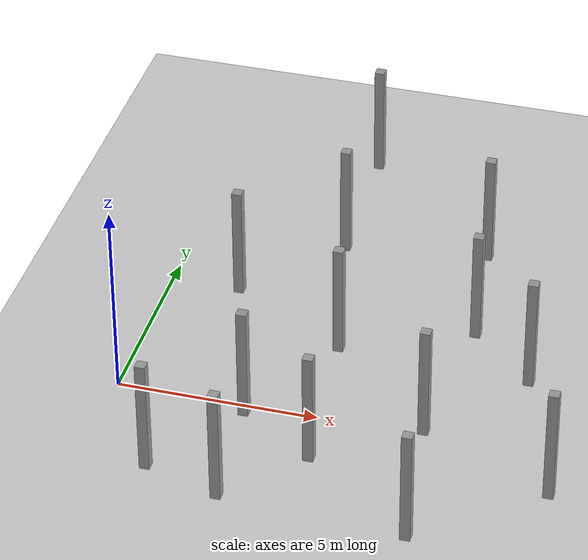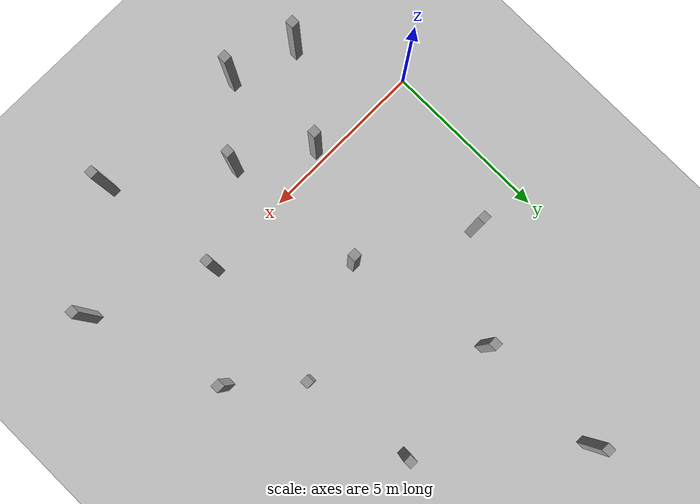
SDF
<sdf version="1.6">
 <world name="default">
  <model name="ground_plane">
   <static>1</static>
   <link name="link">
    <collision name="collision">
     <geometry><plane><normal>0 0 1</normal><size>100 100</size></plane></geometry>
     <surface><friction><ode><mu>100</mu><mu2>50</mu2></ode></friction></surface>
    </collision>
    <visual name="visual">
     <cast_shadows>0</cast_shadows>
     <geometry><plane><normal>0 0 1</normal><size>100 100</size></plane></geometry>
     <material>
      <script><uri>file://media/materials/scripts/gazebo.material</uri><name>Gazebo/Grey</name></script>
     </material>
    </visual>
   </link>
  </model>
  <model name="box_2_5">
   <link name="link">
    <pose>0 0 1 0 -0 0</pose>
    <inertial>
     <mass>1</mass>
     <inertia><ixx>5.16667</ixx><ixy>0</ixy><ixz>0</ixz><iyy>5.16667</iyy><iyz>0</iyz><izz>5.16667</izz></inertia>
     <pose>0 0 1 0 -0 0</pose>
    </inertial>
    <visual name="ModelPreview_4::link::visual_1">
     <geometry><box><size>0.25 0.25 3</size></box></geometry>
     <material>
      <script><name>Gazebo/Grey</name><uri>file://media/materials/scripts/gazebo.material</uri></script>
      <ambient>0.3 0.3 0.3 1</ambient>
      <diffuse>0.7 0.7 0.7 1</diffuse>
      <specular>0.01 0.01 0.01 1</specular>
      <emissive>0 0 0 1</emissive>
      <shader type="vertex"><normal_map>__default__</normal_map></shader>
     </material>
    </visual>
    <visual name="visual">
     <geometry><box><size>0.25 0.25 3</size></box></geometry>
     <material>
      <script><name>Gazebo/Grey</name><uri>file://media/materials/scripts/gazebo.material</uri></script>
      <ambient>0.3 0.3 0.3 1</ambient>
      <diffuse>0.7 0.7 0.7 1</diffuse>
      <specular>0.01 0.01 0.01 1</specular>
      <emissive>0 0 0 1</emissive>
      <shader type="vertex"><normal_map>__default__</normal_map></shader>
     </material>
    </visual>
    <collision name="collision">
     <geometry><box><size>0.25 0.25 3</size></box></geometry>
     <surface>
      <friction>
       <ode><mu>1</mu><mu2>1</mu2><fdir1>0 0 0</fdir1><slip1>0</slip1><slip2>0</slip2></ode>
       <torsional>
        <coefficient>1</coefficient>
        <patch_radius>0</patch_radius>
        <surface_radius>0</surface_radius>
        <use_patch_radius>1</use_patch_radius>
        <ode><slip>0</slip></ode>
       </torsional>
      </friction>
      <bounce><restitution_coefficient>0</restitution_coefficient><threshold>1e+06</threshold></bounce>
      <contact>
       <collide_without_contact>0</collide_without_contact>
       <collide_without_contact_bitmask>1</collide_without_contact_bitmask>
       <collide_bitmask>1</collide_bitmask>
       <ode>
        <soft_cfm>0</soft_cfm>
        <soft_erp>0.2</soft_erp>
        <kp>1e+13</kp>
        <kd>1</kd>
        <max_vel>0.01</max_vel>
        <min_depth>0</min_depth>
       </ode>
       <bullet>
        <split_impulse>1</split_impulse>
        <split_impulse_penetration_threshold>-0.01</split_impulse_penetration_threshold>
        <soft_cfm>0</soft_cfm>
        <soft_erp>0.2</soft_erp>
        <kp>1e+13</kp>
        <kd>1</kd>
       </bullet>
      </contact>
     </surface>
    </collision>
   </link>
   <static>0</static>
   <pose>7.55225 0.161647 0.499023 -7e-06 -0 -0.000106</pose>
  </model>
  <model name="box_2_6">
   <link name="link">
    <pose>0 0 1 0 -0 0</pose>
    <inertial>
     <mass>1</mass>
     <inertia><ixx>5.16667</ixx><ixy>0</ixy><ixz>0</ixz><iyy>5.16667</iyy><iyz>0</iyz><izz>5.16667</izz></inertia>
     <pose>0 0 1 0 -0 0</pose>
    </inertial>
    <visual name="ModelPreview_4::link::visual_1">
     <geometry><box><size>0.25 0.25 3</size></box></geometry>
     <material>
      <script><name>Gazebo/Grey</name><uri>file://media/materials/scripts/gazebo.material</uri></script>
      <ambient>0.3 0.3 0.3 1</ambient>
      <diffuse>0.7 0.7 0.7 1</diffuse>
      <specular>0.01 0.01 0.01 1</specular>
      <emissive>0 0 0 1</emissive>
      <shader type="vertex"><normal_map>__default__</normal_map></shader>
     </material>
    </visual>
    <visual name="visual">
     <geometry><box><size>0.25 0.25 3</size></box></geometry>
     <material>
      <script><name>Gazebo/Grey</name><uri>file://media/materials/scripts/gazebo.material</uri></script>
      <ambient>0.3 0.3 0.3 1</ambient>
      <diffuse>0.7 0.7 0.7 1</diffuse>
      <specular>0.01 0.01 0.01 1</specular>
      <emissive>0 0 0 1</emissive>
      <shader type="vertex"><normal_map>__default__</normal_map></shader>
     </material>
    </visual>
    <collision name="collision">
     <geometry><box><size>0.25 0.25 3</size></box></geometry>
     <surface>
      <friction>
       <ode><mu>1</mu><mu2>1</mu2><fdir1>0 0 0</fdir1><slip1>0</slip1><slip2>0</slip2></ode>
       <torsional>
        <coefficient>1</coefficient>
        <patch_radius>0</patch_radius>
        <surface_radius>0</surface_radius>
        <use_patch_radius>1</use_patch_radius>
        <ode><slip>0</slip></ode>
       </torsional>
      </friction>
      <bounce><restitution_coefficient>0</restitution_coefficient><threshold>1e+06</threshold></bounce>
      <contact>
       <collide_without_contact>0</collide_without_contact>
       <collide_without_contact_bitmask>1</collide_without_contact_bitmask>
       <collide_bitmask>1</collide_bitmask>
       <ode>
        <soft_cfm>0</soft_cfm>
        <soft_erp>0.2</soft_erp>
        <kp>1e+13</kp>
        <kd>1</kd>
        <max_vel>0.01</max_vel>
        <min_depth>0</min_depth>
       </ode>
       <bullet>
        <split_impulse>1</split_impulse>
        <split_impulse_penetration_threshold>-0.01</split_impulse_penetration_threshold>
        <soft_cfm>0</soft_cfm>
        <soft_erp>0.2</soft_erp>
        <kp>1e+13</kp>
        <kd>1</kd>
       </bullet>
      </contact>
     </surface>
    </collision>
   </link>
   <static>0</static>
   <pose>3.4918 -3.31678 0.49912 0 0 -9e-05</pose>
  </model>
  <model name="box_2_13">
   <link name="link">
    <pose>0 0 1 0 -0 0</pose>
    <inertial>
     <mass>1</mass>
     <inertia><ixx>5.16667</ixx><ixy>0</ixy><ixz>0</ixz><iyy>5.16667</iyy><iyz>0</iyz><izz>5.16667</izz></inertia>
     <pose>0 0 1 0 -0 0</pose>
    </inertial>
    <visual name="ModelPreview_4::link::visual_1">
     <geometry><box><size>0.25 0.25 3</size></box></geometry>
     <material>
      <script><name>Gazebo/Grey</name><uri>file://media/materials/scripts/gazebo.material</uri></script>
      <ambient>0.3 0.3 0.3 1</ambient>
      <diffuse>0.7 0.7 0.7 1</diffuse>
      <specular>0.01 0.01 0.01 1</specular>
      <emissive>0 0 0 1</emissive>
      <shader type="vertex"><normal_map>__default__</normal_map></shader>
     </material>
    </visual>
    <visual name="visual">
     <geometry><box><size>0.25 0.25 3</size></box></geometry>
     <material>
      <script><name>Gazebo/Grey</name><uri>file://media/materials/scripts/gazebo.material</uri></script>
      <ambient>0.3 0.3 0.3 1</ambient>
      <diffuse>0.7 0.7 0.7 1</diffuse>
      <specular>0.01 0.01 0.01 1</specular>
      <emissive>0 0 0 1</emissive>
      <shader type="vertex"><normal_map>__default__</normal_map></shader>
     </material>
    </visual>
    <collision name="collision">
     <geometry><box><size>0.25 0.25 3</size></box></geometry>
     <surface>
      <friction>
       <ode><mu>1</mu><mu2>1</mu2><fdir1>0 0 0</fdir1><slip1>0</slip1><slip2>0</slip2></ode>
       <torsional>
        <coefficient>1</coefficient>
        <patch_radius>0</patch_radius>
        <surface_radius>0</surface_radius>
        <use_patch_radius>1</use_patch_radius>
        <ode><slip>0</slip></ode>
       </torsional>
      </friction>
      <bounce><restitution_coefficient>0</restitution_coefficient><threshold>1e+06</threshold></bounce>
      <contact>
       <collide_without_contact>0</collide_without_contact>
       <collide_without_contact_bitmask>1</collide_without_contact_bitmask>
       <collide_bitmask>1</collide_bitmask>
       <ode>
        <soft_cfm>0</soft_cfm>
        <soft_erp>0.2</soft_erp>
        <kp>1e+13</kp>
        <kd>1</kd>
        <max_vel>0.01</max_vel>
        <min_depth>0</min_depth>
       </ode>
       <bullet>
        <split_impulse>1</split_impulse>
        <split_impulse_penetration_threshold>-0.01</split_impulse_penetration_threshold>
        <soft_cfm>0</soft_cfm>
        <soft_erp>0.2</soft_erp>
        <kp>1e+13</kp>
        <kd>1</kd>
       </bullet>
      </contact>
     </surface>
    </collision>
   </link>
   <static>0</static>
   <pose>8.04407 -3.57108 0.49912 0 0 -0.000173</pose>
  </model>
  <model name="box_2_14">
   <link name="link">
    <pose>0 0 1 0 -0 0</pose>
    <inertial>
     <mass>1</mass>
     <inertia><ixx>5.16667</ixx><ixy>0</ixy><ixz>0</ixz><iyy>5.16667</iyy><iyz>0</iyz><izz>5.16667</izz></inertia>
     <pose>0 0 1 0 -0 0</pose>
    </inertial>
    <visual name="ModelPreview_4::link::visual_1">
     <geometry><box><size>0.25 0.25 3</size></box></geometry>
     <material>
      <script><name>Gazebo/Grey</name><uri>file://media/materials/scripts/gazebo.material</uri></script>
      <ambient>0.3 0.3 0.3 1</ambient>
      <diffuse>0.7 0.7 0.7 1</diffuse>
      <specular>0.01 0.01 0.01 1</specular>
      <emissive>0 0 0 1</emissive>
      <shader type="vertex"><normal_map>__default__</normal_map></shader>
     </material>
    </visual>
    <visual name="visual">
     <geometry><box><size>0.25 0.25 3</size></box></geometry>
     <material>
      <script><name>Gazebo/Grey</name><uri>file://media/materials/scripts/gazebo.material</uri></script>
      <ambient>0.3 0.3 0.3 1</ambient>
      <diffuse>0.7 0.7 0.7 1</diffuse>
      <specular>0.01 0.01 0.01 1</specular>
      <emissive>0 0 0 1</emissive>
      <shader type="vertex"><normal_map>__default__</normal_map></shader>
     </material>
    </visual>
    <collision name="collision">
     <geometry><box><size>0.25 0.25 3</size></box></geometry>
     <surface>
      <friction>
       <ode><mu>1</mu><mu2>1</mu2><fdir1>0 0 0</fdir1><slip1>0</slip1><slip2>0</slip2></ode>
       <torsional>
        <coefficient>1</coefficient>
        <patch_radius>0</patch_radius>
        <surface_radius>0</surface_radius>
        <use_patch_radius>1</use_patch_radius>
        <ode><slip>0</slip></ode>
       </torsional>
      </friction>
      <bounce><restitution_coefficient>0</restitution_coefficient><threshold>1e+06</threshold></bounce>
      <contact>
       <collide_without_contact>0</collide_without_contact>
       <collide_without_contact_bitmask>1</collide_without_contact_bitmask>
       <collide_bitmask>1</collide_bitmask>
       <ode>
        <soft_cfm>0</soft_cfm>
        <soft_erp>0.2</soft_erp>
        <kp>1e+13</kp>
        <kd>1</kd>
        <max_vel>0.01</max_vel>
        <min_depth>0</min_depth>
       </ode>
       <bullet>
        <split_impulse>1</split_impulse>
        <split_impulse_penetration_threshold>-0.01</split_impulse_penetration_threshold>
        <soft_cfm>0</soft_cfm>
        <soft_erp>0.2</soft_erp>
        <kp>1e+13</kp>
        <kd>1</kd>
       </bullet>
      </contact>
     </surface>
    </collision>
   </link>
   <static>0</static>
   <pose>3.24903 -0.25791 0.49912 0 0 -0.000165</pose>
  </model>
  <model name="box_2_15">
   <link name="link">
    <pose>0 0 1 0 -0 0</pose>
    <inertial>
     <mass>1</mass>
     <inertia><ixx>5.16667</ixx><ixy>0</ixy><ixz>0</ixz><iyy>5.16667</iyy><iyz>0</iyz><izz>5.16667</izz></inertia>
     <pose>0 0 1 0 -0 0</pose>
    </inertial>
    <visual name="ModelPreview_4::link::visual_1">
     <geometry><box><size>0.25 0.25 3</size></box></geometry>
     <material>
      <script><name>Gazebo/Grey</name><uri>file://media/materials/scripts/gazebo.material</uri></script>
      <ambient>0.3 0.3 0.3 1</ambient>
      <diffuse>0.7 0.7 0.7 1</diffuse>
      <specular>0.01 0.01 0.01 1</specular>
      <emissive>0 0 0 1</emissive>
      <shader type="vertex"><normal_map>__default__</normal_map></shader>
     </material>
    </visual>
    <visual name="visual">
     <geometry><box><size>0.25 0.25 3</size></box></geometry>
     <material>
      <script><name>Gazebo/Grey</name><uri>file://media/materials/scripts/gazebo.material</uri></script>
      <ambient>0.3 0.3 0.3 1</ambient>
      <diffuse>0.7 0.7 0.7 1</diffuse>
      <specular>0.01 0.01 0.01 1</specular>
      <emissive>0 0 0 1</emissive>
      <shader type="vertex"><normal_map>__default__</normal_map></shader>
     </material>
    </visual>
    <collision name="collision">
     <geometry><box><size>0.25 0.25 3</size></box></geometry>
     <surface>
      <friction>
       <ode><mu>1</mu><mu2>1</mu2><fdir1>0 0 0</fdir1><slip1>0</slip1><slip2>0</slip2></ode>
       <torsional>
        <coefficient>1</coefficient>
        <patch_radius>0</patch_radius>
        <surface_radius>0</surface_radius>
        <use_patch_radius>1</use_patch_radius>
        <ode><slip>0</slip></ode>
       </torsional>
      </friction>
      <bounce><restitution_coefficient>0</restitution_coefficient><threshold>1e+06</threshold></bounce>
      <contact>
       <collide_without_contact>0</collide_without_contact>
       <collide_without_contact_bitmask>1</collide_without_contact_bitmask>
       <collide_bitmask>1</collide_bitmask>
       <ode>
        <soft_cfm>0</soft_cfm>
        <soft_erp>0.2</soft_erp>
        <kp>1e+13</kp>
        <kd>1</kd>
        <max_vel>0.01</max_vel>
        <min_depth>0</min_depth>
       </ode>
       <bullet>
        <split_impulse>1</split_impulse>
        <split_impulse_penetration_threshold>-0.01</split_impulse_penetration_threshold>
        <soft_cfm>0</soft_cfm>
        <soft_erp>0.2</soft_erp>
        <kp>1e+13</kp>
        <kd>1</kd>
       </bullet>
      </contact>
     </surface>
    </collision>
   </link>
   <static>0</static>
   <pose>1.7506 4.41033 0.49912 0 0 -0.000142</pose>
  </model>
  <model name="box_2_18">
   <link name="link">
    <pose>0 0 1 0 -0 0</pose>
    <inertial>
     <mass>1</mass>
     <inertia><ixx>5.16667</ixx><ixy>0</ixy><ixz>0</ixz><iyy>5.16667</iyy><iyz>0</iyz><izz>5.16667</izz></inertia>
     <pose>0 0 1 0 -0 0</pose>
    </inertial>
    <visual name="ModelPreview_4::link::visual_1">
     <geometry><box><size>0.25 0.25 3</size></box></geometry>
     <material>
      <script><name>Gazebo/Grey</name><uri>file://media/materials/scripts/gazebo.material</uri></script>
      <ambient>0.3 0.3 0.3 1</ambient>
      <diffuse>0.7 0.7 0.7 1</diffuse>
      <specular>0.01 0.01 0.01 1</specular>
      <emissive>0 0 0 1</emissive>
      <shader type="vertex"><normal_map>__default__</normal_map></shader>
     </material>
    </visual>
    <visual name="visual">
     <geometry><box><size>0.25 0.25 3</size></box></geometry>
     <material>
      <script><name>Gazebo/Grey</name><uri>file://media/materials/scripts/gazebo.material</uri></script>
      <ambient>0.3 0.3 0.3 1</ambient>
      <diffuse>0.7 0.7 0.7 1</diffuse>
      <specular>0.01 0.01 0.01 1</specular>
      <emissive>0 0 0 1</emissive>
      <shader type="vertex"><normal_map>__default__</normal_map></shader>
     </material>
    </visual>
    <collision name="collision">
     <geometry><box><size>0.25 0.25 3</size></box></geometry>
     <surface>
      <friction>
       <ode><mu>1</mu><mu2>1</mu2><fdir1>0 0 0</fdir1><slip1>0</slip1><slip2>0</slip2></ode>
       <torsional>
        <coefficient>1</coefficient>
        <patch_radius>0</patch_radius>
        <surface_radius>0</surface_radius>
        <use_patch_radius>1</use_patch_radius>
        <ode><slip>0</slip></ode>
       </torsional>
      </friction>
      <bounce><restitution_coefficient>0</restitution_coefficient><threshold>1e+06</threshold></bounce>
      <contact>
       <collide_without_contact>0</collide_without_contact>
       <collide_without_contact_bitmask>1</collide_without_contact_bitmask>
       <collide_bitmask>1</collide_bitmask>
       <ode>
        <soft_cfm>0</soft_cfm>
        <soft_erp>0.2</soft_erp>
        <kp>1e+13</kp>
        <kd>1</kd>
        <max_vel>0.01</max_vel>
        <min_depth>0</min_depth>
       </ode>
       <bullet>
        <split_impulse>1</split_impulse>
        <split_impulse_penetration_threshold>-0.01</split_impulse_penetration_threshold>
        <soft_cfm>0</soft_cfm>
        <soft_erp>0.2</soft_erp>
        <kp>1e+13</kp>
        <kd>1</kd>
       </bullet>
      </contact>
     </surface>
    </collision>
   </link>
   <static>0</static>
   <pose>7.90997 4.14944 0.49912 0 0 -0.00012</pose>
  </model>
  <model name="box_2_20">
   <link name="link">
    <pose>0 0 1 0 -0 0</pose>
    <inertial>
     <mass>1</mass>
     <inertia><ixx>5.16667</ixx><ixy>0</ixy><ixz>0</ixz><iyy>5.16667</iyy><iyz>0</iyz><izz>5.16667</izz></inertia>
     <pose>0 0 1 0 -0 0</pose>
    </inertial>
    <visual name="ModelPreview_4::link::visual_1">
     <geometry><box><size>0.25 0.25 3</size></box></geometry>
     <material>
      <script><name>Gazebo/Grey</name><uri>file://media/materials/scripts/gazebo.material</uri></script>
      <ambient>0.3 0.3 0.3 1</ambient>
      <diffuse>0.7 0.7 0.7 1</diffuse>
      <specular>0.01 0.01 0.01 1</specular>
      <emissive>0 0 0 1</emissive>
      <shader type="vertex"><normal_map>__default__</normal_map></shader>
     </material>
    </visual>
    <visual name="visual">
     <geometry><box><size>0.25 0.25 3</size></box></geometry>
     <material>
      <script><name>Gazebo/Grey</name><uri>file://media/materials/scripts/gazebo.material</uri></script>
      <ambient>0.3 0.3 0.3 1</ambient>
      <diffuse>0.7 0.7 0.7 1</diffuse>
      <specular>0.01 0.01 0.01 1</specular>
      <emissive>0 0 0 1</emissive>
      <shader type="vertex"><normal_map>__default__</normal_map></shader>
     </material>
    </visual>
    <collision name="collision">
     <geometry><box><size>0.25 0.25 3</size></box></geometry>
     <surface>
      <friction>
       <ode><mu>1</mu><mu2>1</mu2><fdir1>0 0 0</fdir1><slip1>0</slip1><slip2>0</slip2></ode>
       <torsional>
        <coefficient>1</coefficient>
        <patch_radius>0</patch_radius>
        <surface_radius>0</surface_radius>
        <use_patch_radius>1</use_patch_radius>
        <ode><slip>0</slip></ode>
       </torsional>
      </friction>
      <bounce><restitution_coefficient>0</restitution_coefficient><threshold>1e+06</threshold></bounce>
      <contact>
       <collide_without_contact>0</collide_without_contact>
       <collide_without_contact_bitmask>1</collide_without_contact_bitmask>
       <collide_bitmask>1</collide_bitmask>
       <ode>
        <soft_cfm>0</soft_cfm>
        <soft_erp>0.2</soft_erp>
        <kp>1e+13</kp>
        <kd>1</kd>
        <max_vel>0.01</max_vel>
        <min_depth>0</min_depth>
       </ode>
       <bullet>
        <split_impulse>1</split_impulse>
        <split_impulse_penetration_threshold>-0.01</split_impulse_penetration_threshold>
        <soft_cfm>0</soft_cfm>
        <soft_erp>0.2</soft_erp>
        <kp>1e+13</kp>
        <kd>1</kd>
       </bullet>
      </contact>
     </surface>
    </collision>
   </link>
   <static>0</static>
   <pose>5.19231 -1.47915 0.49912 0 0 -0.000167</pose>
  </model>
  <model name="box_2_21">
   <link name="link">
    <pose>0 0 1 0 -0 0</pose>
    <inertial>
     <mass>1</mass>
     <inertia><ixx>5.16667</ixx><ixy>0</ixy><ixz>0</ixz><iyy>5.16667</iyy><iyz>0</iyz><izz>5.16667</izz></inertia>
     <pose>0 0 1 0 -0 0</pose>
    </inertial>
    <visual name="ModelPreview_4::link::visual_1">
     <geometry><box><size>0.25 0.25 3</size></box></geometry>
     <material>
      <script><name>Gazebo/Grey</name><uri>file://media/materials/scripts/gazebo.material</uri></script>
      <ambient>0.3 0.3 0.3 1</ambient>
      <diffuse>0.7 0.7 0.7 1</diffuse>
      <specular>0.01 0.01 0.01 1</specular>
      <emissive>0 0 0 1</emissive>
      <shader type="vertex"><normal_map>__default__</normal_map></shader>
     </material>
    </visual>
    <visual name="visual">
     <geometry><box><size>0.25 0.25 3</size></box></geometry>
     <material>
      <script><name>Gazebo/Grey</name><uri>file://media/materials/scripts/gazebo.material</uri></script>
      <ambient>0.3 0.3 0.3 1</ambient>
      <diffuse>0.7 0.7 0.7 1</diffuse>
      <specular>0.01 0.01 0.01 1</specular>
      <emissive>0 0 0 1</emissive>
      <shader type="vertex"><normal_map>__default__</normal_map></shader>
     </material>
    </visual>
    <collision name="collision">
     <geometry><box><size>0.25 0.25 3</size></box></geometry>
     <surface>
      <friction>
       <ode><mu>1</mu><mu2>1</mu2><fdir1>0 0 0</fdir1><slip1>0</slip1><slip2>0</slip2></ode>
       <torsional>
        <coefficient>1</coefficient>
        <patch_radius>0</patch_radius>
        <surface_radius>0</surface_radius>
        <use_patch_radius>1</use_patch_radius>
        <ode><slip>0</slip></ode>
       </torsional>
      </friction>
      <bounce><restitution_coefficient>0</restitution_coefficient><threshold>1e+06</threshold></bounce>
      <contact>
       <collide_without_contact>0</collide_without_contact>
       <collide_without_contact_bitmask>1</collide_without_contact_bitmask>
       <collide_bitmask>1</collide_bitmask>
       <ode>
        <soft_cfm>0</soft_cfm>
        <soft_erp>0.2</soft_erp>
        <kp>1e+13</kp>
        <kd>1</kd>
        <max_vel>0.01</max_vel>
        <min_depth>0</min_depth>
       </ode>
       <bullet>
        <split_impulse>1</split_impulse>
        <split_impulse_penetration_threshold>-0.01</split_impulse_penetration_threshold>
        <soft_cfm>0</soft_cfm>
        <soft_erp>0.2</soft_erp>
        <kp>1e+13</kp>
        <kd>1</kd>
       </bullet>
      </contact>
     </surface>
    </collision>
   </link>
   <static>0</static>
   <pose>4.78721 2.7372 0.49912 0 0 -0.000139</pose>
  </model>
  <model name="box_2_30">
   <link name="link">
    <pose>0 0 1 0 -0 0</pose>
    <inertial>
     <mass>1</mass>
     <inertia><ixx>5.16667</ixx><ixy>0</ixy><ixz>0</ixz><iyy>5.16667</iyy><iyz>0</iyz><izz>5.16667</izz></inertia>
     <pose>0 0 1 0 -0 0</pose>
    </inertial>
    <visual name="ModelPreview_4::link::visual_1">
     <geometry><box><size>0.25 0.25 3</size></box></geometry>
     <material>
      <script><name>Gazebo/Grey</name><uri>file://media/materials/scripts/gazebo.material</uri></script>
      <ambient>0.3 0.3 0.3 1</ambient>
      <diffuse>0.7 0.7 0.7 1</diffuse>
      <specular>0.01 0.01 0.01 1</specular>
      <emissive>0 0 0 1</emissive>
      <shader type="vertex"><normal_map>__default__</normal_map></shader>
     </material>
    </visual>
    <visual name="visual">
     <geometry><box><size>0.25 0.25 3</size></box></geometry>
     <material>
      <script><name>Gazebo/Grey</name><uri>file://media/materials/scripts/gazebo.material</uri></script>
      <ambient>0.3 0.3 0.3 1</ambient>
      <diffuse>0.7 0.7 0.7 1</diffuse>
      <specular>0.01 0.01 0.01 1</specular>
      <emissive>0 0 0 1</emissive>
      <shader type="vertex"><normal_map>__default__</normal_map></shader>
     </material>
    </visual>
    <collision name="collision">
     <geometry><box><size>0.25 0.25 3</size></box></geometry>
     <surface>
      <friction>
       <ode><mu>1</mu><mu2>1</mu2><fdir1>0 0 0</fdir1><slip1>0</slip1><slip2>0</slip2></ode>
       <torsional>
        <coefficient>1</coefficient>
        <patch_radius>0</patch_radius>
        <surface_radius>0</surface_radius>
        <use_patch_radius>1</use_patch_radius>
        <ode><slip>0</slip></ode>
       </torsional>
      </friction>
      <bounce><restitution_coefficient>0</restitution_coefficient><threshold>1e+06</threshold></bounce>
      <contact>
       <collide_without_contact>0</collide_without_contact>
       <collide_without_contact_bitmask>1</collide_without_contact_bitmask>
       <collide_bitmask>1</collide_bitmask>
       <ode>
        <soft_cfm>0</soft_cfm>
        <soft_erp>0.2</soft_erp>
        <kp>1e+13</kp>
        <kd>1</kd>
        <max_vel>0.01</max_vel>
        <min_depth>0</min_depth>
       </ode>
       <bullet>
        <split_impulse>1</split_impulse>
        <split_impulse_penetration_threshold>-0.01</split_impulse_penetration_threshold>
        <soft_cfm>0</soft_cfm>
        <soft_erp>0.2</soft_erp>
        <kp>1e+13</kp>
        <kd>1</kd>
       </bullet>
      </contact>
     </surface>
    </collision>
   </link>
   <static>0</static>
   <pose>3.87517 6.85562 0.49912 0 0 -0.000157</pose>
  </model>
  <model name="box_2_32">
   <link name="link">
    <pose>0 0 1 0 -0 0</pose>
    <inertial>
     <mass>1</mass>
     <inertia><ixx>5.16667</ixx><ixy>0</ixy><ixz>0</ixz><iyy>5.16667</iyy><iyz>0</iyz><izz>5.16667</izz></inertia>
     <pose>0 0 1 0 -0 0</pose>
    </inertial>
    <visual name="ModelPreview_4::link::visual_1">
     <geometry><box><size>0.25 0.25 3</size></box></geometry>
     <material>
      <script><name>Gazebo/Grey</name><uri>file://media/materials/scripts/gazebo.material</uri></script>
      <ambient>0.3 0.3 0.3 1</ambient>
      <diffuse>0.7 0.7 0.7 1</diffuse>
      <specular>0.01 0.01 0.01 1</specular>
      <emissive>0 0 0 1</emissive>
      <shader type="vertex"><normal_map>__default__</normal_map></shader>
     </material>
    </visual>
    <visual name="visual">
     <geometry><box><size>0.25 0.25 3</size></box></geometry>
     <material>
      <script><name>Gazebo/Grey</name><uri>file://media/materials/scripts/gazebo.material</uri></script>
      <ambient>0.3 0.3 0.3 1</ambient>
      <diffuse>0.7 0.7 0.7 1</diffuse>
      <specular>0.01 0.01 0.01 1</specular>
      <emissive>0 0 0 1</emissive>
      <shader type="vertex"><normal_map>__default__</normal_map></shader>
     </material>
    </visual>
    <collision name="collision">
     <geometry><box><size>0.25 0.25 3</size></box></geometry>
     <surface>
      <friction>
       <ode><mu>1</mu><mu2>1</mu2><fdir1>0 0 0</fdir1><slip1>0</slip1><slip2>0</slip2></ode>
       <torsional>
        <coefficient>1</coefficient>
        <patch_radius>0</patch_radius>
        <surface_radius>0</surface_radius>
        <use_patch_radius>1</use_patch_radius>
        <ode><slip>0</slip></ode>
       </torsional>
      </friction>
      <bounce><restitution_coefficient>0</restitution_coefficient><threshold>1e+06</threshold></bounce>
      <contact>
       <collide_without_contact>0</collide_without_contact>
       <collide_without_contact_bitmask>1</collide_without_contact_bitmask>
       <collide_bitmask>1</collide_bitmask>
       <ode>
        <soft_cfm>0</soft_cfm>
        <soft_erp>0.2</soft_erp>
        <kp>1e+13</kp>
        <kd>1</kd>
        <max_vel>0.01</max_vel>
        <min_depth>0</min_depth>
       </ode>
       <bullet>
        <split_impulse>1</split_impulse>
        <split_impulse_penetration_threshold>-0.01</split_impulse_penetration_threshold>
        <soft_cfm>0</soft_cfm>
        <soft_erp>0.2</soft_erp>
        <kp>1e+13</kp>
        <kd>1</kd>
       </bullet>
      </contact>
     </surface>
    </collision>
   </link>
   <static>0</static>
   <pose>1.59095 -2.7288 0.49912 0 0 -0.00014</pose>
  </model>
  <model name="box_2_35">
   <link name="link">
    <pose>0 0 1 0 -0 0</pose>
    <inertial>
     <mass>1</mass>
     <inertia><ixx>5.16667</ixx><ixy>0</ixy><ixz>0</ixz><iyy>5.16667</iyy><iyz>0</iyz><izz>5.16667</izz></inertia>
     <pose>0 0 1 0 -0 0</pose>
    </inertial>
    <visual name="ModelPreview_4::link::visual_1">
     <geometry><box><size>0.25 0.25 3</size></box></geometry>
     <material>
      <script><name>Gazebo/Grey</name><uri>file://media/materials/scripts/gazebo.material</uri></script>
      <ambient>0.3 0.3 0.3 1</ambient>
      <diffuse>0.7 0.7 0.7 1</diffuse>
      <specular>0.01 0.01 0.01 1</specular>
      <emissive>0 0 0 1</emissive>
      <shader type="vertex"><normal_map>__default__</normal_map></shader>
     </material>
    </visual>
    <visual name="visual">
     <geometry><box><size>0.25 0.25 3</size></box></geometry>
     <material>
      <script><name>Gazebo/Grey</name><uri>file://media/materials/scripts/gazebo.material</uri></script>
      <ambient>0.3 0.3 0.3 1</ambient>
      <diffuse>0.7 0.7 0.7 1</diffuse>
      <specular>0.01 0.01 0.01 1</specular>
      <emissive>0 0 0 1</emissive>
      <shader type="vertex"><normal_map>__default__</normal_map></shader>
     </material>
    </visual>
    <collision name="collision">
     <geometry><box><size>0.25 0.25 3</size></box></geometry>
     <surface>
      <friction>
       <ode><mu>1</mu><mu2>1</mu2><fdir1>0 0 0</fdir1><slip1>0</slip1><slip2>0</slip2></ode>
       <torsional>
        <coefficient>1</coefficient>
        <patch_radius>0</patch_radius>
        <surface_radius>0</surface_radius>
        <use_patch_radius>1</use_patch_radius>
        <ode><slip>0</slip></ode>
       </torsional>
      </friction>
      <bounce><restitution_coefficient>0</restitution_coefficient><threshold>1e+06</threshold></bounce>
      <contact>
       <collide_without_contact>0</collide_without_contact>
       <collide_without_contact_bitmask>1</collide_without_contact_bitmask>
       <collide_bitmask>1</collide_bitmask>
       <ode>
        <soft_cfm>0</soft_cfm>
        <soft_erp>0.2</soft_erp>
        <kp>1e+13</kp>
        <kd>1</kd>
        <max_vel>0.01</max_vel>
        <min_depth>0</min_depth>
       </ode>
       <bullet>
        <split_impulse>1</split_impulse>
        <split_impulse_penetration_threshold>-0.01</split_impulse_penetration_threshold>
        <soft_cfm>0</soft_cfm>
        <soft_erp>0.2</soft_erp>
        <kp>1e+13</kp>
        <kd>1</kd>
       </bullet>
      </contact>
     </surface>
    </collision>
   </link>
   <static>0</static>
   <pose>10.8722 -1.31685 0.49912 0 0 -2.8e-05</pose>
  </model>
  <model name="box_2_36">
   <link name="link">
    <pose>0 0 1 0 -0 0</pose>
    <inertial>
     <mass>1</mass>
     <inertia><ixx>5.16667</ixx><ixy>0</ixy><ixz>0</ixz><iyy>5.16667</iyy><iyz>0</iyz><izz>5.16667</izz></inertia>
     <pose>0 0 1 0 -0 0</pose>
    </inertial>
    <visual name="ModelPreview_4::link::visual_1">
     <geometry><box><size>0.25 0.25 3</size></box></geometry>
     <material>
      <script><name>Gazebo/Grey</name><uri>file://media/materials/scripts/gazebo.material</uri></script>
      <ambient>0.3 0.3 0.3 1</ambient>
      <diffuse>0.7 0.7 0.7 1</diffuse>
      <specular>0.01 0.01 0.01 1</specular>
      <emissive>0 0 0 1</emissive>
      <shader type="vertex"><normal_map>__default__</normal_map></shader>
     </material>
    </visual>
    <visual name="visual">
     <geometry><box><size>0.25 0.25 3</size></box></geometry>
     <material>
      <script><name>Gazebo/Grey</name><uri>file://media/materials/scripts/gazebo.material</uri></script>
      <ambient>0.3 0.3 0.3 1</ambient>
      <diffuse>0.7 0.7 0.7 1</diffuse>
      <specular>0.01 0.01 0.01 1</specular>
      <emissive>0 0 0 1</emissive>
      <shader type="vertex"><normal_map>__default__</normal_map></shader>
     </material>
    </visual>
    <collision name="collision">
     <geometry><box><size>0.25 0.25 3</size></box></geometry>
     <surface>
      <friction>
       <ode><mu>1</mu><mu2>1</mu2><fdir1>0 0 0</fdir1><slip1>0</slip1><slip2>0</slip2></ode>
       <torsional>
        <coefficient>1</coefficient>
        <patch_radius>0</patch_radius>
        <surface_radius>0</surface_radius>
        <use_patch_radius>1</use_patch_radius>
        <ode><slip>0</slip></ode>
       </torsional>
      </friction>
      <bounce><restitution_coefficient>0</restitution_coefficient><threshold>1e+06</threshold></bounce>
      <contact>
       <collide_without_contact>0</collide_without_contact>
       <collide_without_contact_bitmask>1</collide_without_contact_bitmask>
       <collide_bitmask>1</collide_bitmask>
       <ode>
        <soft_cfm>0</soft_cfm>
        <soft_erp>0.2</soft_erp>
        <kp>1e+13</kp>
        <kd>1</kd>
        <max_vel>0.01</max_vel>
        <min_depth>0</min_depth>
       </ode>
       <bullet>
        <split_impulse>1</split_impulse>
        <split_impulse_penetration_threshold>-0.01</split_impulse_penetration_threshold>
        <soft_cfm>0</soft_cfm>
        <soft_erp>0.2</soft_erp>
        <kp>1e+13</kp>
        <kd>1</kd>
       </bullet>
      </contact>
     </surface>
    </collision>
   </link>
   <static>0</static>
   <pose>9.57016 2.62866 0.49912 0 0 -2.7e-05</pose>
  </model>
  <model name="box_2_37">
   <link name="link">
    <pose>0 0 1 0 -0 0</pose>
    <inertial>
     <mass>1</mass>
     <inertia><ixx>5.16667</ixx><ixy>0</ixy><ixz>0</ixz><iyy>5.16667</iyy><iyz>0</iyz><izz>5.16667</izz></inertia>
     <pose>0 0 1 0 -0 0</pose>
    </inertial>
    <visual name="ModelPreview_4::link::visual_1">
     <geometry><box><size>0.25 0.25 3</size></box></geometry>
     <material>
      <script><name>Gazebo/Grey</name><uri>file://media/materials/scripts/gazebo.material</uri></script>
      <ambient>0.3 0.3 0.3 1</ambient>
      <diffuse>0.7 0.7 0.7 1</diffuse>
      <specular>0.01 0.01 0.01 1</specular>
      <emissive>0 0 0 1</emissive>
      <shader type="vertex"><normal_map>__default__</normal_map></shader>
     </material>
    </visual>
    <visual name="visual">
     <geometry><box><size>0.25 0.25 3</size></box></geometry>
     <material>
      <script><name>Gazebo/Grey</name><uri>file://media/materials/scripts/gazebo.material</uri></script>
      <ambient>0.3 0.3 0.3 1</ambient>
      <diffuse>0.7 0.7 0.7 1</diffuse>
      <specular>0.01 0.01 0.01 1</specular>
      <emissive>0 0 0 1</emissive>
      <shader type="vertex"><normal_map>__default__</normal_map></shader>
     </material>
    </visual>
    <collision name="collision">
     <geometry><box><size>0.25 0.25 3</size></box></geometry>
     <surface>
      <friction>
       <ode><mu>1</mu><mu2>1</mu2><fdir1>0 0 0</fdir1><slip1>0</slip1><slip2>0</slip2></ode>
       <torsional>
        <coefficient>1</coefficient>
        <patch_radius>0</patch_radius>
        <surface_radius>0</surface_radius>
        <use_patch_radius>1</use_patch_radius>
        <ode><slip>0</slip></ode>
       </torsional>
      </friction>
      <bounce><restitution_coefficient>0</restitution_coefficient><threshold>1e+06</threshold></bounce>
      <contact>
       <collide_without_contact>0</collide_without_contact>
       <collide_without_contact_bitmask>1</collide_without_contact_bitmask>
       <collide_bitmask>1</collide_bitmask>
       <ode>
        <soft_cfm>0</soft_cfm>
        <soft_erp>0.2</soft_erp>
        <kp>1e+13</kp>
        <kd>1</kd>
        <max_vel>0.01</max_vel>
        <min_depth>0</min_depth>
       </ode>
       <bullet>
        <split_impulse>1</split_impulse>
        <split_impulse_penetration_threshold>-0.01</split_impulse_penetration_threshold>
        <soft_cfm>0</soft_cfm>
        <soft_erp>0.2</soft_erp>
        <kp>1e+13</kp>
        <kd>1</kd>
       </bullet>
      </contact>
     </surface>
    </collision>
   </link>
   <static>0</static>
   <pose>7.48463 7.38991 0.49912 0 0 -2.8e-05</pose>
  </model>
  <model name="box_2_38">
   <link name="link">
    <pose>0 0 1 0 -0 0</pose>
    <inertial>
     <mass>1</mass>
     <inertia><ixx>5.16667</ixx><ixy>0</ixy><ixz>0</ixz><iyy>5.16667</iyy><iyz>0</iyz><izz>5.16667</izz></inertia>
     <pose>0 0 1 0 -0 0</pose>
    </inertial>
    <visual name="ModelPreview_4::link::visual_1">
     <geometry><box><size>0.25 0.25 3</size></box></geometry>
     <material>
      <script><name>Gazebo/Grey</name><uri>file://media/materials/scripts/gazebo.material</uri></script>
      <ambient>0.3 0.3 0.3 1</ambient>
      <diffuse>0.7 0.7 0.7 1</diffuse>
      <specular>0.01 0.01 0.01 1</specular>
      <emissive>0 0 0 1</emissive>
      <shader type="vertex"><normal_map>__default__</normal_map></shader>
     </material>
    </visual>
    <visual name="visual">
     <geometry><box><size>0.25 0.25 3</size></box></geometry>
     <material>
      <script><name>Gazebo/Grey</name><uri>file://media/materials/scripts/gazebo.material</uri></script>
      <ambient>0.3 0.3 0.3 1</ambient>
      <diffuse>0.7 0.7 0.7 1</diffuse>
      <specular>0.01 0.01 0.01 1</specular>
      <emissive>0 0 0 1</emissive>
      <shader type="vertex"><normal_map>__default__</normal_map></shader>
     </material>
    </visual>
    <collision name="collision">
     <geometry><box><size>0.25 0.25 3</size></box></geometry>
     <surface>
      <friction>
       <ode><mu>1</mu><mu2>1</mu2><fdir1>0 0 0</fdir1><slip1>0</slip1><slip2>0</slip2></ode>
       <torsional>
        <coefficient>1</coefficient>
        <patch_radius>0</patch_radius>
        <surface_radius>0</surface_radius>
        <use_patch_radius>1</use_patch_radius>
        <ode><slip>0</slip></ode>
       </torsional>
      </friction>
      <bounce><restitution_coefficient>0</restitution_coefficient><threshold>1e+06</threshold></bounce>
      <contact>
       <collide_without_contact>0</collide_without_contact>
       <collide_without_contact_bitmask>1</collide_without_contact_bitmask>
       <collide_bitmask>1</collide_bitmask>
       <ode>
        <soft_cfm>0</soft_cfm>
        <soft_erp>0.2</soft_erp>
        <kp>1e+13</kp>
        <kd>1</kd>
        <max_vel>0.01</max_vel>
        <min_depth>0</min_depth>
       </ode>
       <bullet>
        <split_impulse>1</split_impulse>
        <split_impulse_penetration_threshold>-0.01</split_impulse_penetration_threshold>
        <soft_cfm>0</soft_cfm>
        <soft_erp>0.2</soft_erp>
        <kp>1e+13</kp>
        <kd>1</kd>
       </bullet>
      </contact>
     </surface>
    </collision>
   </link>
   <static>0</static>
   <pose>3.78195 10.6893 0.49912 0 0 -2.7e-05</pose>
  </model>
 </world>
</sdf>
